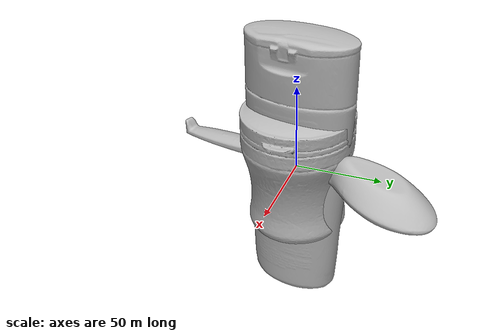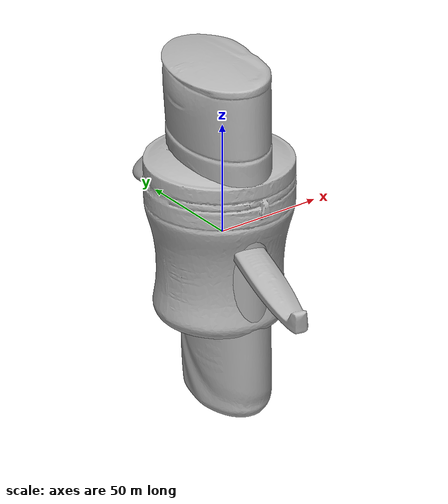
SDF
<sdf version="1.4">
 <world name="default">
  <light name="light1" type="point">
   <pose>0 0 1 0 0 0</pose>
   <diffuse>3 3 3 1</diffuse>
   <specular>3 3 3 1</specular>
  </light>
  <light name="light2" type="point">
   <pose>0 0.5 2 0 0 0</pose>
   <diffuse>1 1 1 1</diffuse>
   <specular>1 1 1 1</specular>
  </light>
  <light name="light3" type="point">
   <pose>0 0.5 2 0 0 0</pose>
   <diffuse>3 3 3 1</diffuse>
   <specular>3 3 3 1</specular>
  </light>
  <scene><ambient>0.7 0.7 0.7</ambient></scene>
  <model name="bottle1">
   <link name="link_bottle1">
    <collision name="default">
     <geometry>
      <mesh><uri>model://green_arrow/collision_meshes/collision.obj</uri><scale>1.0 1.0 1.0</scale></mesh>
     </geometry>
     <surface>
      <friction><ode><mu>0.5</mu><mu2>0.5</mu2></ode></friction>
      <contact><ode><max_vel>0</max_vel><min_depth>0.0001</min_depth><kp>1e8</kp></ode></contact>
     </surface>
    </collision>
    <visual name="default">
     <geometry>
      <mesh><uri>model://green_arrow/visual_meshes/visual.dae</uri><scale>1.0 1.0 1.0</scale></mesh>
     </geometry>
    </visual>
    <inertial>
     <mass>0.159866601228714</mass>
     <pose>0.0005358478520065546 -0.0008270691614598036 0.0022109695710241795 -0.0633227561078847 0.012984243694000861 0.6740794776591725</pose>
     <inertia>
      <ixx>0.00011596808</ixx>
      <iyy>0.00011579238</iyy>
      <izz>7.488036e-05</izz>
      <ixy>0</ixy>
      <ixz>0</ixz>
      <iyz>0</iyz>
     </inertia>
    </inertial>
   </link>
   <pose>-0.04439335688948631 0.03659893944859505 0.038961656391620636 0.04528497495988062 0.024256516665021047 -2.2740005343431795</pose>
  </model>
  <model name="bottle2">
   <link name="link_bottle2">
    <collision name="default">
     <geometry>
      <mesh><uri>model://conditioner/collision_meshes/collision.obj</uri><scale>1.0 1.0 1.0</scale></mesh>
     </geometry>
     <surface>
      <friction><ode><mu>0.5</mu><mu2>0.5</mu2></ode></friction>
      <contact><ode><max_vel>0</max_vel><min_depth>0.0001</min_depth><kp>1e8</kp></ode></contact>
     </surface>
    </collision>
    <visual name="default">
     <geometry>
      <mesh><uri>model://conditioner/visual_meshes/visual.dae</uri><scale>1.0 1.0 1.0</scale></mesh>
     </geometry>
    </visual>
    <inertial>
     <mass>0.1887805312871933</mass>
     <pose>-0.00055994390277192 -0.00017297487647738308 0.004359682556241751 -0.005038374268360293 0.015306043554332214 0.015072361860715313</pose>
     <inertia>
      <ixx>0.00041066532</ixx>
      <iyy>0.00043991112</iyy>
      <izz>6.3318876e-05</izz>
      <ixy>0</ixy>
      <ixz>0</ixz>
      <iyz>0</iyz>
     </inertia>
    </inertial>
   </link>
   <pose>-0.034756772220134735 -0.13917692005634308 0.08122970908880234 0.03689224521441314 -0.01565982784580979 -1.7790764402685</pose>
  </model>
  <model name="silverware1">
   <link name="link_silverware1">
    <collision name="default">
     <geometry>
      <mesh><uri>model://doraemon_spoon/collision_meshes/collision.obj</uri><scale>1.0 1.0 1.0</scale></mesh>
     </geometry>
     <surface>
      <friction><ode><mu>0.5</mu><mu2>0.5</mu2></ode></friction>
      <contact><ode><max_vel>0</max_vel><min_depth>0.0001</min_depth><kp>1e8</kp></ode></contact>
     </surface>
    </collision>
    <visual name="default">
     <geometry>
      <mesh><uri>model://doraemon_spoon/visual_meshes/visual.dae</uri><scale>1.0 1.0 1.0</scale></mesh>
     </geometry>
    </visual>
    <inertial>
     <mass>0.029215902090072632</mass>
     <pose>-0.022165078669786453 -0.0006374581134878099 -0.003332544816657901 -0.009147069561506448 0.07380416816022378 -0.014123831282405222</pose>
     <inertia>
      <ixx>2.2884674e-06</ixx>
      <iyy>6.499588e-05</iyy>
      <izz>6.610089e-05</izz>
      <ixy>0</ixy>
      <ixz>0</ixz>
      <iyz>0</iyz>
     </inertia>
    </inertial>
   </link>
   <pose>0.31373852491378784 -0.1215958297252655 0.0049419160932302475 -3.137409242073231 0.11915051409782246 -1.8685691895041585</pose>
  </model>
  <model name="stationery1">
   <link name="link_stationery1">
    <collision name="default">
     <geometry>
      <mesh><uri>model://correction_fuid/collision_meshes/collision.obj</uri><scale>1.0 1.0 1.0</scale></mesh>
     </geometry>
     <surface>
      <friction><ode><mu>0.5</mu><mu2>0.5</mu2></ode></friction>
      <contact><ode><max_vel>0</max_vel><min_depth>0.0001</min_depth><kp>1e8</kp></ode></contact>
     </surface>
    </collision>
    <visual name="default">
     <geometry>
      <mesh><uri>model://correction_fuid/visual_meshes/visual.dae</uri><scale>1.0 1.0 1.0</scale></mesh>
     </geometry>
    </visual>
    <inertial>
     <mass>0.02664039097726345</mass>
     <pose>-0.00012557733862195164 -0.0009722907561808825 -0.001618212671019137 -0.010846611490809042 0.019488348158978066 -0.015992455472155966</pose>
     <inertia>
      <ixx>2.5801672e-05</ixx>
      <iyy>1.5615498e-06</iyy>
      <izz>2.6473212e-05</izz>
      <ixy>0</ixy>
      <ixz>0</ixz>
      <iyz>0</iyz>
     </inertia>
    </inertial>
   </link>
   <pose>0.14043806493282318 -0.3532300293445587 0.009632830508053303 -0.001727110672912036 -0.05616846775216266 0.8248460639945939</pose>
  </model>
  <model name="bowl1">
   <link name="link_bowl1">
    <collision name="default">
     <geometry>
      <mesh><uri>model://doraemon_bowl/collision_meshes/collision.obj</uri><scale>1.0 1.0 1.0</scale></mesh>
     </geometry>
     <surface>
      <friction><ode><mu>0.5</mu><mu2>0.5</mu2></ode></friction>
      <contact><ode><max_vel>0</max_vel><min_depth>0.0001</min_depth><kp>1e8</kp></ode></contact>
     </surface>
    </collision>
    <visual name="default">
     <geometry>
      <mesh><uri>model://doraemon_bowl/visual_meshes/visual.dae</uri><scale>1.0 1.0 1.0</scale></mesh>
     </geometry>
    </visual>
    <inertial>
     <mass>0.0632677748799324</mass>
     <pose>-0.014629557728767395 0.00048571318620815873 -0.0020864882972091436 -0.005093978566849342 -0.10568406006641042 -0.026426380562233804</pose>
     <inertia>
      <ixx>8.773087e-05</ixx>
      <iyy>0.00011545301</iyy>
      <izz>0.00016985848</izz>
      <ixy>0</ixy>
      <ixz>0</ixz>
      <iyz>0</iyz>
     </inertia>
    </inertial>
   </link>
   <pose>-0.047813497483730316 0.17884941399097443 0.026029620319604874 0.0052104998522480295 0.0038477753359125355 2.050775540817271</pose>
  </model>
  <model name="cup1">
   <link name="link_cup1">
    <collision name="default">
     <geometry>
      <mesh><uri>model://doraemon_cup/collision_meshes/collision.obj</uri><scale>1.0 1.0 1.0</scale></mesh>
     </geometry>
     <surface>
      <friction><ode><mu>0.5</mu><mu2>0.5</mu2></ode></friction>
      <contact><ode><max_vel>0</max_vel><min_depth>0.0001</min_depth><kp>1e8</kp></ode></contact>
     </surface>
    </collision>
    <visual name="default">
     <geometry>
      <mesh><uri>model://doraemon_cup/visual_meshes/visual.dae</uri><scale>1.0 1.0 1.0</scale></mesh>
     </geometry>
    </visual>
    <inertial>
     <mass>0.04278137534856796</mass>
     <pose>-0.0003292987239547074 -0.0016633577179163694 -0.0022522551007568836 0.19498548950287564 -0.013693938110122818 -0.3205458650037051</pose>
     <inertia>
      <ixx>5.8507427e-05</ixx>
      <iyy>5.6580026e-05</iyy>
      <izz>4.623892e-05</izz>
      <ixy>0</ixy>
      <ixz>0</ixz>
      <iyz>0</iyz>
     </inertia>
    </inertial>
   </link>
   <pose>0.2549251616001129 -0.353108674287796 0.04623299092054367 -0.011517938157261683 -0.009111399971238771 -0.30551681533482306</pose>
  </model>
  <model name="plate1">
   <link name="link_plate1">
    <collision name="default">
     <geometry>
      <mesh><uri>model://hello_kitty_plate/collision_meshes/collision.obj</uri><scale>1.0 1.0 1.0</scale></mesh>
     </geometry>
     <surface>
      <friction><ode><mu>0.5</mu><mu2>0.5</mu2></ode></friction>
      <contact><ode><max_vel>0</max_vel><min_depth>0.0001</min_depth><kp>1e8</kp></ode></contact>
     </surface>
    </collision>
    <visual name="default">
     <geometry>
      <mesh><uri>model://hello_kitty_plate/visual_meshes/visual.dae</uri><scale>1.0 1.0 1.0</scale></mesh>
     </geometry>
    </visual>
    <inertial>
     <mass>0.03555070236325264</mass>
     <pose>0.0073143006302416325 0.0002893744967877865 -0.0027947186026722193 -0.00010431820965322355 -0.007054446463638022 -0.014449070801334592</pose>
     <inertia>
      <ixx>6.855243e-05</ixx>
      <iyy>0.00012937908</iyy>
      <izz>0.0001964492</izz>
      <ixy>0</ixy>
      <ixz>0</ixz>
      <iyz>0</iyz>
     </inertia>
    </inertial>
   </link>
   <pose>0.22593653202056885 0.15024718642234802 0.008291484788060188 0.0004652007794633163 0.004173430635153157 1.5842340557299177</pose>
  </model>
  <model name="box4">
   <link name="link_box4">
    <collision name="default">
     <geometry>
      <mesh><uri>model://wooden_puzzle1/collision_meshes/collision.obj</uri><scale>1.0 1.0 1.0</scale></mesh>
     </geometry>
     <surface>
      <friction><ode><mu>0.5</mu><mu2>0.5</mu2></ode></friction>
      <contact><ode><max_vel>0</max_vel><min_depth>0.0001</min_depth><kp>1e8</kp></ode></contact>
     </surface>
    </collision>
    <visual name="default">
     <geometry>
      <mesh><uri>model://wooden_puzzle1/visual_meshes/visual.dae</uri><scale>1.0 1.0 1.0</scale></mesh>
     </geometry>
    </visual>
    <inertial>
     <mass>0.03278602659702301</mass>
     <pose>-0.00017350679263472557 7.972260937094688e-05 -9.191554272547364e-05 -0.07784358361794479 -0.263610796923839 -0.5528741327723476</pose>
     <inertia>
      <ixx>6.1858273e-06</ixx>
      <iyy>6.0667485e-06</iyy>
      <izz>6.139123e-06</izz>
      <ixy>0</ixy>
      <ixz>0</ixz>
      <iyz>0</iyz>
     </inertia>
    </inertial>
   </link>
   <pose>0.027772899717092514 -0.042297326028347015 0.016802014783024788 0.01051240000316916 -0.009453470516725246 -0.6431556623751684</pose>
  </model>
  <physics type="ode">
   <max_contacts>50</max_contacts>
   <ode>
    <solver><type>quick</type><iters>75</iters></solver>
    <constraints>
     <contact_max_correcting_vel>0</contact_max_correcting_vel>
     <contact_surface_layer>0</contact_surface_layer>
    </constraints>
   </ode>
  </physics>
 </world>
</sdf>
